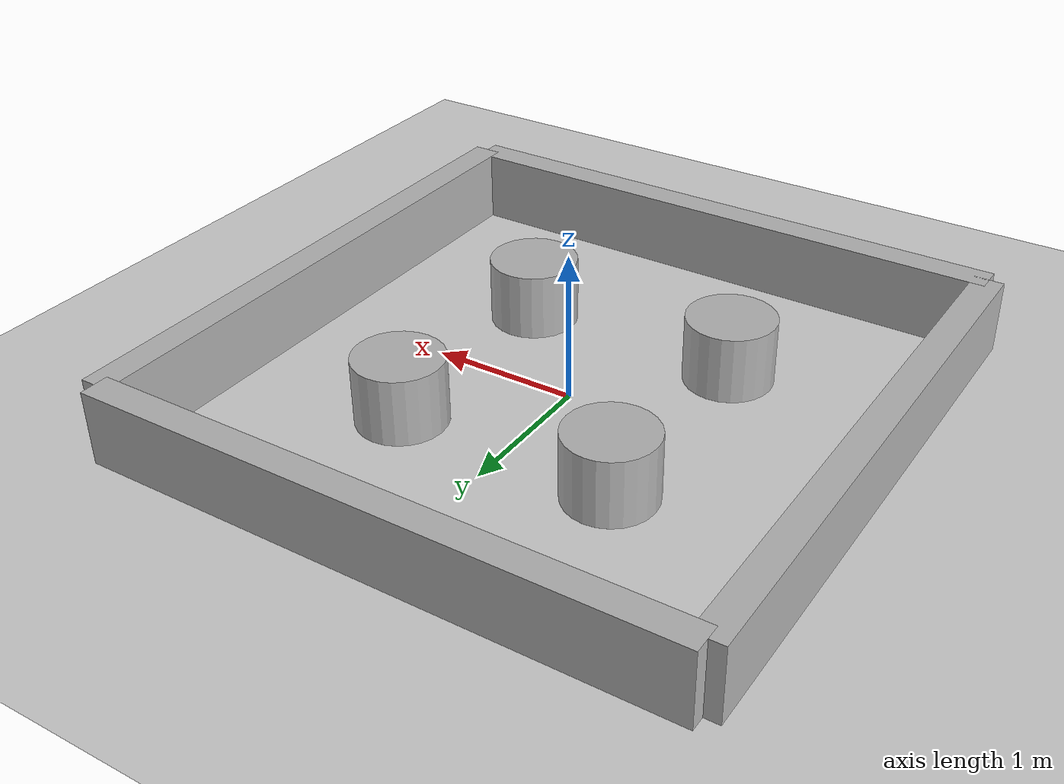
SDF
<?xml version="1.0" ?>
<sdf version="1.7">
    <world name="empty">
        <physics name="1ms" type="ignored">
            <max_step_size>0.001</max_step_size>
            <real_time_factor>1.0</real_time_factor>
        </physics>
        <plugin
            filename="libignition-gazebo-physics-system.so"
            name="ignition::gazebo::systems::Physics">
        </plugin>
        <plugin
            filename="libignition-gazebo-user-commands-system.so"
            name="ignition::gazebo::systems::UserCommands">
        </plugin>
        <plugin
            filename="libignition-gazebo-scene-broadcaster-system.so"
            name="ignition::gazebo::systems::SceneBroadcaster">
        </plugin>

        <gui fullscreen="0">

            <!-- 3D scene -->
            <plugin filename="GzScene3D" name="3D View">
                <ignition-gui>
                <title>3D View</title>
                <property type="bool" key="showTitleBar">false</property>
                <property type="string" key="state">docked</property>
                </ignition-gui>

                <engine>ogre2</engine>
                <scene>scene</scene>
                <ambient_light>0.4 0.4 0.4</ambient_light>
                <background_color>0.8 0.8 0.8</background_color>
            </plugin>

            <!-- World control -->
            <plugin filename="WorldControl" name="World control">
                <ignition-gui>
                <title>World control</title>
                <property type="bool" key="showTitleBar">false</property>
                <property type="bool" key="resizable">false</property>
                <property type="double" key="height">72</property>
                <property type="double" key="width">121</property>
                <property type="double" key="z">1</property>

                <property type="string" key="state">floating</property>
                <anchors target="3D View">
                    <line own="left" target="left"/>
                    <line own="bottom" target="bottom"/>
                </anchors>
                </ignition-gui>

                <play_pause>true</play_pause>
                <step>true</step>
                <start_paused>true</start_paused>
                <service>/world/car_world/control</service>
                <stats_topic>/world/car_world/stats</stats_topic>
            </plugin>

            <!-- World statistics -->
            <plugin filename="WorldStats" name="World stats">
                <ignition-gui>
                <title>World stats</title>
                <property type="bool" key="showTitleBar">false</property>
                <property type="bool" key="resizable">false</property>
                <property type="double" key="height">110</property>
                <property type="double" key="width">290</property>
                <property type="double" key="z">1</property>

                <property type="string" key="state">floating</property>
                <anchors target="3D View">
                    <line own="right" target="right"/>
                    <line own="bottom" target="bottom"/>
                </anchors>
                </ignition-gui>

                <sim_time>true</sim_time>
                <real_time>true</real_time>
                <real_time_factor>true</real_time_factor>
                <iterations>true</iterations>
                <topic>/world/car_world/stats</topic>

            </plugin>

            <!-- Entity tree -->
            <plugin filename="EntityTree" name="Entity tree">
            </plugin>

        </gui>

        <light type="directional" name="sun">
            <cast_shadows>true</cast_shadows>
            <pose>0 0 10 0 0 0</pose>
            <diffuse>0.8 0.8 0.8 1</diffuse>
            <specular>0.2 0.2 0.2 1</specular>
            <attenuation>
                <range>1000</range>
                <constant>0.9</constant>
                <linear>0.01</linear>
                <quadratic>0.001</quadratic>
            </attenuation>
            <direction>-0.5 0.1 -0.9</direction>
        </light>

        <model name="ground_plane">
            <static>true</static>
            <link name="link">
                <collision name="collision">
                <geometry>
                    <plane>
                    <normal>0 0 1</normal>
                    </plane>
                </geometry>
                </collision>
                <visual name="visual">
                <geometry>
                    <plane>
                    <normal>0 0 1</normal>
                    <size>100 100</size>
                    </plane>
                </geometry>
                <material>
                    <ambient>0.8 0.8 0.8 1</ambient>
                    <diffuse>0.8 0.8 0.8 1</diffuse>
                    <specular>0.8 0.8 0.8 1</specular>
                </material>
                </visual>
            </link>
        </model>

        <!-- walls -->
        <model name='box0'>
        <pose>2.0 0.0 0.25 0 -0 0</pose>
        <static>true</static>
        <link name='box_link0'>
            <collision name='box_collision0'>
            <geometry>
                <box>
                <size>0.2 4.0 0.5</size>
                </box>
            </geometry>
            </collision>
            <visual name='box_visual0'>
            <geometry>
                <box>
                <size>0.2 4.0 0.5</size>
                </box>
            </geometry>
            <material>
                <ambient>0.3 0.3 0.3 1</ambient>
                <diffuse>0.7 0.7 0.7 1</diffuse>
                <specular>1 1 1 1</specular>
            </material>
            </visual>
        </link>
        </model>
        <model name='box1'>
        <pose>-2.0 0.0 0.25 0 -0 0</pose>
        <static>true</static>
        <link name='box_link1'>
            <collision name='box_collision1'>
            <geometry>
                <box>
                <size>0.2 4.0 0.5</size>
                </box>
            </geometry>
            </collision>
            <visual name='box_visual1'>
            <geometry>
                <box>
                <size>0.2 4.0 0.5</size>
                </box>
            </geometry>
            <material>
                <ambient>0.3 0.3 0.3 1</ambient>
                <diffuse>0.7 0.7 0.7 1</diffuse>
                <specular>1 1 1 1</specular>
            </material>
            </visual>
        </link>
        </model>
        <model name='box2'>
        <pose>0.0 -2.0 0.25 0 -0 1.5708</pose>
        <static>true</static>
        <link name='box_link2'>
            <collision name='box_collision2'>
            <geometry>
                <box>
                <size>0.2 4.0 0.5</size>
                </box>
            </geometry>
            </collision>
            <visual name='box_visual2'>
            <geometry>
                <box>
                <size>0.2 4.0 0.5</size>
                </box>
            </geometry>
            <material>
                <ambient>0.3 0.3 0.3 1</ambient>
                <diffuse>0.7 0.7 0.7 1</diffuse>
                <specular>1 1 1 1</specular>
            </material>
            </visual>
        </link>
        </model>
        <model name='box3'>
        <pose>0.0 2.0 0.25 0 -0 1.5708</pose>
        <static>true</static>
        <link name='box_link3'>
            <collision name='box_collision3'>
            <geometry>
                <box>
                <size>0.2 4.0 0.5</size>
                </box>
            </geometry>
            </collision>
            <visual name='box_visual3'>
            <geometry>
                <box>
                <size>0.2 4.0 0.5</size>
                </box>
            </geometry>
            <material>
                <ambient>0.3 0.3 0.3 1</ambient>
                <diffuse>0.7 0.7 0.7 1</diffuse>
                <specular>1 1 1 1</specular>
            </material>
            </visual>
        </link>
        </model>

        <!-- cylinders -->
        <model name='cylinder0'>
        <pose>0.75 0.75 0.2 0 -0 0</pose>
        <static>true</static>
        <link name='cylinder_link0'>
            <collision name='cylinder_collision0'>
            <geometry>
                <cylinder>
                <radius>0.3</radius>
                <length>0.5</length>
                </cylinder>
            </geometry>
            </collision>
            <visual name='cylinder_visual0'>
            <geometry>
                <cylinder>
                <radius>0.3</radius>
                <length>0.5</length>
                </cylinder>
            </geometry>
            <material>
                <ambient>0.3 0.3 0.3 1</ambient>
                <diffuse>0.7 0.7 0.7 1</diffuse>
                <specular>1 1 1 1</specular>
            </material>
            </visual>
        </link>
        </model>
        <model name='cylinder1'>
        <pose>0.75 -0.75 0.2 0 -0 0</pose>
        <static>true</static>
        <link name='cylinder_link1'>
            <collision name='cylinder_collision1'>
            <geometry>
                <cylinder>
                <radius>0.3</radius>
                <length>0.5</length>
                </cylinder>
            </geometry>
            </collision>
            <visual name='cylinder_visual1'>
            <geometry>
                <cylinder>
                <radius>0.3</radius>
                <length>0.5</length>
                </cylinder>
            </geometry>
            <material>
                <ambient>0.3 0.3 0.3 1</ambient>
                <diffuse>0.7 0.7 0.7 1</diffuse>
                <specular>1 1 1 1</specular>
            </material>
            </visual>
        </link>
        </model>
        <model name='cylinder2'>
        <pose>-0.75 0.75 0.2 0 -0 0</pose>
        <static>true</static>
        <link name='cylinder_link2'>
            <collision name='cylinder_collision2'>
            <geometry>
                <cylinder>
                <radius>0.3</radius>
                <length>0.5</length>
                </cylinder>
            </geometry>
            </collision>
            <visual name='cylinder_visual2'>
            <geometry>
                <cylinder>
                <radius>0.3</radius>
                <length>0.5</length>
                </cylinder>
            </geometry>
            <material>
                <ambient>0.3 0.3 0.3 1</ambient>
                <diffuse>0.7 0.7 0.7 1</diffuse>
                <specular>1 1 1 1</specular>
            </material>
            </visual>
        </link>
        </model>
        <model name='cylinder3'>
        <pose>-0.75 -0.75 0.2 0 -0 0</pose>
        <static>true</static>
        <link name='cylinder_link3'>
            <collision name='cylinder_collision3'>
            <geometry>
                <cylinder>
                <radius>0.3</radius>
                <length>0.5</length>
                </cylinder>
            </geometry>
            </collision>
            <visual name='cylinder_visual3'>
            <geometry>
                <cylinder>
                <radius>0.3</radius>
                <length>0.5</length>
                </cylinder>
            </geometry>
            <material>
                <ambient>0.3 0.3 0.3 1</ambient>
                <diffuse>0.7 0.7 0.7 1</diffuse>
                <specular>1 1 1 1</specular>
            </material>
            </visual>
        </link>
        </model>
    </world>
</sdf>
